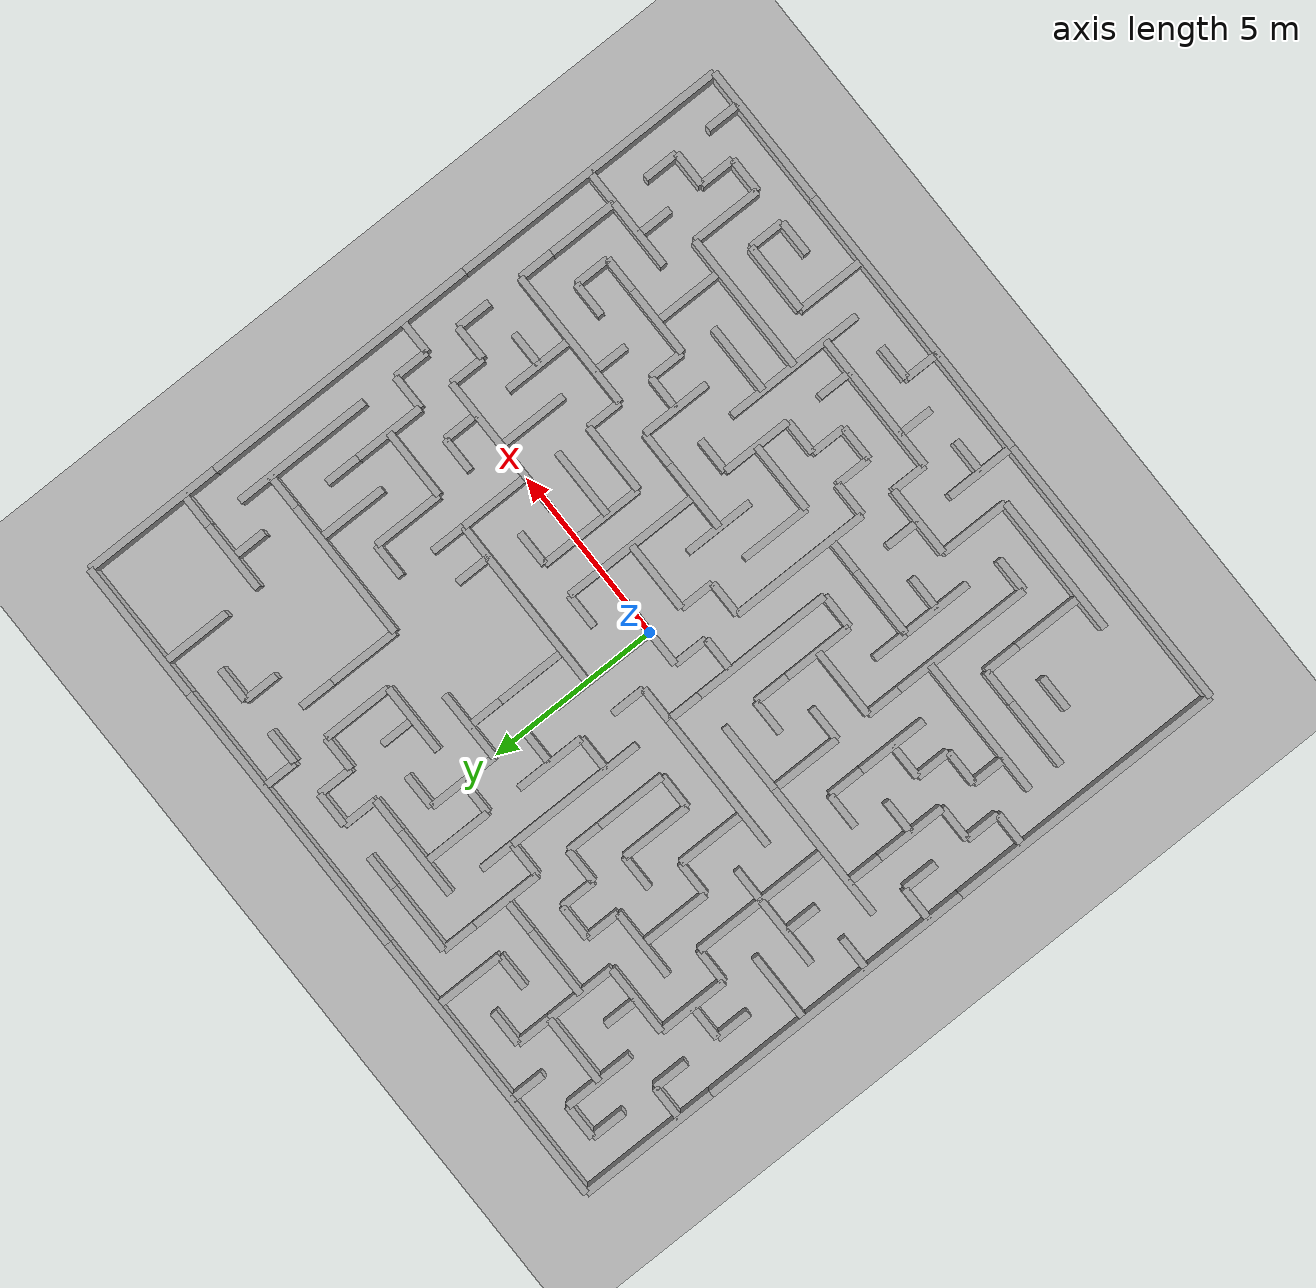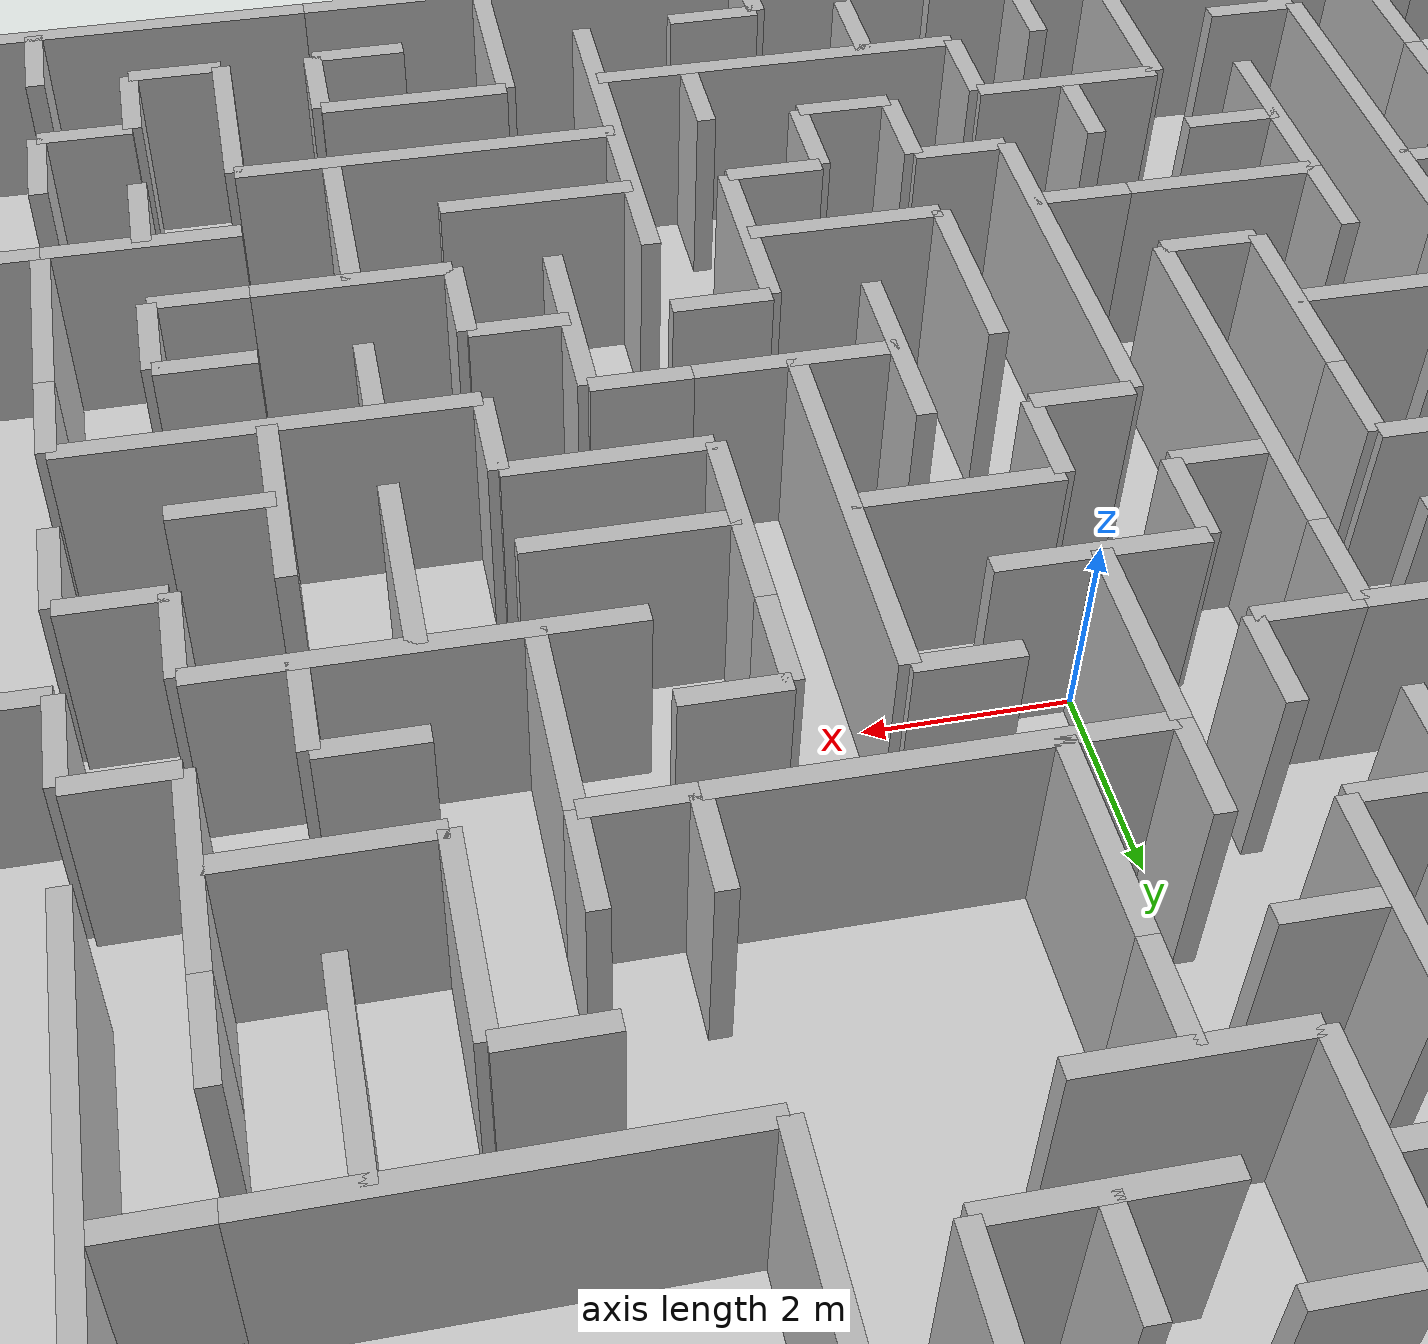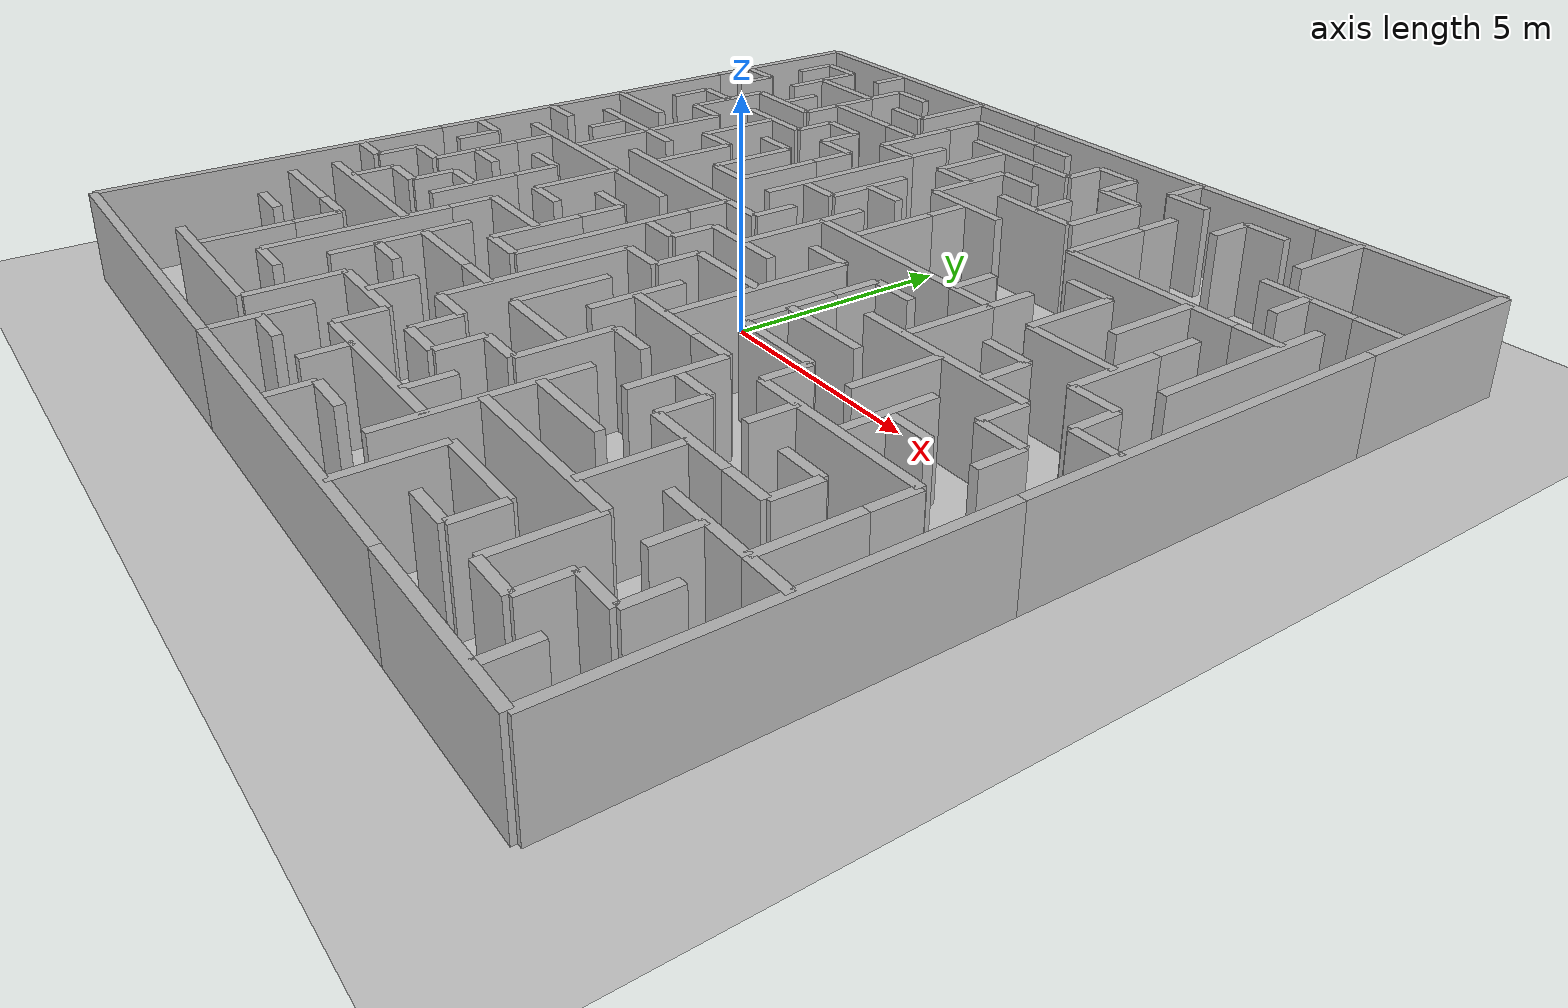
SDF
<?xml version="1.0"?>
<sdf version="1.8">
  <world name="maze_world">
    <physics name="1ms" type="ignored">
      <max_step_size>0.001</max_step_size>
      <real_time_factor>1.0</real_time_factor>
    </physics>
    <plugin name='ignition::gazebo::systems::Physics'
      filename='libignition-gazebo-physics-system.so' />
    <plugin name='ignition::gazebo::systems::UserCommands'
      filename='libignition-gazebo-user-commands-system.so' />
    <plugin name='ignition::gazebo::systems::SceneBroadcaster'
      filename='libignition-gazebo-scene-broadcaster-system.so' />
    <plugin name='ignition::gazebo::systems::Imu' filename='ignition-gazebo-imu-system' />
    <plugin name='ignition::gazebo::systems::Sensors' filename='ignition-gazebo-sensors-system'>
      <render_engine>ogre2</render_engine>
    </plugin>
    <include>
      <uri>https://fuel.gazebosim.org/1.0/OpenRobotics/models/Sun</uri>
    </include>
    <include>
      <name>ground</name>
      <uri>model://ground</uri>
    </include>
    <!-- Generated maze wall segments -->
    <include>
      <name>wall_8m_0</name>
      <uri>model://wall_8m</uri>
      <pose>-6.00 -10.00 0 0 0 0</pose>
    </include>
    <include>
      <name>wall_8m_1</name>
      <uri>model://wall_8m</uri>
      <pose>2.00 -10.00 0 0 0 0</pose>
    </include>
    <include>
      <name>wall_4m_2</name>
      <uri>model://wall_4m</uri>
      <pose>8.00 -10.00 0 0 0 0</pose>
    </include>
    <include>
      <name>wall_8m_3</name>
      <uri>model://wall_8m</uri>
      <pose>-6.00 10.00 0 0 0 0</pose>
    </include>
    <include>
      <name>wall_8m_4</name>
      <uri>model://wall_8m</uri>
      <pose>2.00 10.00 0 0 0 0</pose>
    </include>
    <include>
      <name>wall_4m_5</name>
      <uri>model://wall_4m</uri>
      <pose>8.00 10.00 0 0 0 0</pose>
    </include>
    <include>
      <name>wall_8m_6</name>
      <uri>model://wall_8m</uri>
      <pose>-10.00 -6.00 0 0 0 1.5708</pose>
    </include>
    <include>
      <name>wall_8m_7</name>
      <uri>model://wall_8m</uri>
      <pose>-10.00 2.00 0 0 0 1.5708</pose>
    </include>
    <include>
      <name>wall_4m_8</name>
      <uri>model://wall_4m</uri>
      <pose>-10.00 8.00 0 0 0 1.5708</pose>
    </include>
    <include>
      <name>wall_8m_9</name>
      <uri>model://wall_8m</uri>
      <pose>10.00 -6.00 0 0 0 1.5708</pose>
    </include>
    <include>
      <name>wall_8m_10</name>
      <uri>model://wall_8m</uri>
      <pose>10.00 2.00 0 0 0 1.5708</pose>
    </include>
    <include>
      <name>wall_4m_11</name>
      <uri>model://wall_4m</uri>
      <pose>10.00 8.00 0 0 0 1.5708</pose>
    </include>
    <include>
      <name>wall_4m_12</name>
      <uri>model://wall_4m</uri>
      <pose>-5.00 -9.00 0 0 0 0</pose>
    </include>
    <include>
      <name>wall_1m_13</name>
      <uri>model://wall_1m</uri>
      <pose>-1.50 -9.00 0 0 0 0</pose>
    </include>
    <include>
      <name>wall_1m_14</name>
      <uri>model://wall_1m</uri>
      <pose>1.50 -9.00 0 0 0 0</pose>
    </include>
    <include>
      <name>wall_1m_15</name>
      <uri>model://wall_1m</uri>
      <pose>5.50 -9.00 0 0 0 0</pose>
    </include>
    <include>
      <name>wall_1m_16</name>
      <uri>model://wall_1m</uri>
      <pose>7.50 -9.00 0 0 0 0</pose>
    </include>
    <include>
      <name>wall_1m_17</name>
      <uri>model://wall_1m</uri>
      <pose>-4.50 -8.00 0 0 0 0</pose>
    </include>
    <include>
      <name>wall_4m_18</name>
      <uri>model://wall_4m</uri>
      <pose>1.00 -8.00 0 0 0 0</pose>
    </include>
    <include>
      <name>wall_2m_19</name>
      <uri>model://wall_2m</uri>
      <pose>5.00 -8.00 0 0 0 0</pose>
    </include>
    <include>
      <name>wall_1m_20</name>
      <uri>model://wall_1m</uri>
      <pose>8.50 -8.00 0 0 0 0</pose>
    </include>
    <include>
      <name>wall_1m_21</name>
      <uri>model://wall_1m</uri>
      <pose>-7.50 -7.00 0 0 0 0</pose>
    </include>
    <include>
      <name>wall_2m_22</name>
      <uri>model://wall_2m</uri>
      <pose>-2.00 -7.00 0 0 0 0</pose>
    </include>
    <include>
      <name>wall_1m_23</name>
      <uri>model://wall_1m</uri>
      <pose>0.50 -7.00 0 0 0 0</pose>
    </include>
    <include>
      <name>wall_4m_24</name>
      <uri>model://wall_4m</uri>
      <pose>5.00 -7.00 0 0 0 0</pose>
    </include>
    <include>
      <name>wall_2m_25</name>
      <uri>model://wall_2m</uri>
      <pose>-8.00 -6.00 0 0 0 0</pose>
    </include>
    <include>
      <name>wall_1m_26</name>
      <uri>model://wall_1m</uri>
      <pose>-6.50 -6.00 0 0 0 0</pose>
    </include>
    <include>
      <name>wall_1m_27</name>
      <uri>model://wall_1m</uri>
      <pose>-3.50 -6.00 0 0 0 0</pose>
    </include>
    <include>
      <name>wall_1m_28</name>
      <uri>model://wall_1m</uri>
      <pose>-0.50 -6.00 0 0 0 0</pose>
    </include>
    <include>
      <name>wall_1m_29</name>
      <uri>model://wall_1m</uri>
      <pose>1.50 -6.00 0 0 0 0</pose>
    </include>
    <include>
      <name>wall_2m_30</name>
      <uri>model://wall_2m</uri>
      <pose>4.00 -6.00 0 0 0 0</pose>
    </include>
    <include>
      <name>wall_2m_31</name>
      <uri>model://wall_2m</uri>
      <pose>8.00 -6.00 0 0 0 0</pose>
    </include>
    <include>
      <name>wall_1m_32</name>
      <uri>model://wall_1m</uri>
      <pose>9.50 -6.00 0 0 0 0</pose>
    </include>
    <include>
      <name>wall_4m_33</name>
      <uri>model://wall_4m</uri>
      <pose>-7.00 -5.00 0 0 0 0</pose>
    </include>
    <include>
      <name>wall_2m_34</name>
      <uri>model://wall_2m</uri>
      <pose>-3.00 -5.00 0 0 0 0</pose>
    </include>
    <include>
      <name>wall_1m_35</name>
      <uri>model://wall_1m</uri>
      <pose>-1.50 -5.00 0 0 0 0</pose>
    </include>
    <include>
      <name>wall_2m_36</name>
      <uri>model://wall_2m</uri>
      <pose>1.00 -5.00 0 0 0 0</pose>
    </include>
    <include>
      <name>wall_2m_37</name>
      <uri>model://wall_2m</uri>
      <pose>6.00 -5.00 0 0 0 0</pose>
    </include>
    <include>
      <name>wall_1m_38</name>
      <uri>model://wall_1m</uri>
      <pose>7.50 -5.00 0 0 0 0</pose>
    </include>
    <include>
      <name>wall_1m_39</name>
      <uri>model://wall_1m</uri>
      <pose>-9.50 -4.00 0 0 0 0</pose>
    </include>
    <include>
      <name>wall_1m_40</name>
      <uri>model://wall_1m</uri>
      <pose>-7.50 -4.00 0 0 0 0</pose>
    </include>
    <include>
      <name>wall_1m_41</name>
      <uri>model://wall_1m</uri>
      <pose>-2.50 -4.00 0 0 0 0</pose>
    </include>
    <include>
      <name>wall_1m_42</name>
      <uri>model://wall_1m</uri>
      <pose>2.50 -4.00 0 0 0 0</pose>
    </include>
    <include>
      <name>wall_1m_43</name>
      <uri>model://wall_1m</uri>
      <pose>4.50 -4.00 0 0 0 0</pose>
    </include>
    <include>
      <name>wall_1m_44</name>
      <uri>model://wall_1m</uri>
      <pose>7.50 -4.00 0 0 0 0</pose>
    </include>
    <include>
      <name>wall_1m_45</name>
      <uri>model://wall_1m</uri>
      <pose>-8.50 -3.00 0 0 0 0</pose>
    </include>
    <include>
      <name>wall_1m_46</name>
      <uri>model://wall_1m</uri>
      <pose>-6.50 -3.00 0 0 0 0</pose>
    </include>
    <include>
      <name>wall_2m_47</name>
      <uri>model://wall_2m</uri>
      <pose>-4.00 -3.00 0 0 0 0</pose>
    </include>
    <include>
      <name>wall_2m_48</name>
      <uri>model://wall_2m</uri>
      <pose>2.00 -3.00 0 0 0 0</pose>
    </include>
    <include>
      <name>wall_1m_49</name>
      <uri>model://wall_1m</uri>
      <pose>3.50 -3.00 0 0 0 0</pose>
    </include>
    <include>
      <name>wall_4m_50</name>
      <uri>model://wall_4m</uri>
      <pose>7.00 -3.00 0 0 0 0</pose>
    </include>
    <include>
      <name>wall_1m_51</name>
      <uri>model://wall_1m</uri>
      <pose>-7.50 -2.00 0 0 0 0</pose>
    </include>
    <include>
      <name>wall_1m_52</name>
      <uri>model://wall_1m</uri>
      <pose>-4.50 -2.00 0 0 0 0</pose>
    </include>
    <include>
      <name>wall_1m_53</name>
      <uri>model://wall_1m</uri>
      <pose>-0.50 -2.00 0 0 0 0</pose>
    </include>
    <include>
      <name>wall_2m_54</name>
      <uri>model://wall_2m</uri>
      <pose>4.00 -2.00 0 0 0 0</pose>
    </include>
    <include>
      <name>wall_1m_55</name>
      <uri>model://wall_1m</uri>
      <pose>7.50 -2.00 0 0 0 0</pose>
    </include>
    <include>
      <name>wall_1m_56</name>
      <uri>model://wall_1m</uri>
      <pose>-9.50 -1.00 0 0 0 0</pose>
    </include>
    <include>
      <name>wall_1m_57</name>
      <uri>model://wall_1m</uri>
      <pose>-6.50 -1.00 0 0 0 0</pose>
    </include>
    <include>
      <name>wall_1m_58</name>
      <uri>model://wall_1m</uri>
      <pose>-3.50 -1.00 0 0 0 0</pose>
    </include>
    <include>
      <name>wall_1m_59</name>
      <uri>model://wall_1m</uri>
      <pose>-1.50 -1.00 0 0 0 0</pose>
    </include>
    <include>
      <name>wall_2m_60</name>
      <uri>model://wall_2m</uri>
      <pose>1.00 -1.00 0 0 0 0</pose>
    </include>
    <include>
      <name>wall_2m_61</name>
      <uri>model://wall_2m</uri>
      <pose>4.00 -1.00 0 0 0 0</pose>
    </include>
    <include>
      <name>wall_1m_62</name>
      <uri>model://wall_1m</uri>
      <pose>8.50 -1.00 0 0 0 0</pose>
    </include>
    <include>
      <name>wall_4m_63</name>
      <uri>model://wall_4m</uri>
      <pose>-7.00 0.00 0 0 0 0</pose>
    </include>
    <include>
      <name>wall_2m_64</name>
      <uri>model://wall_2m</uri>
      <pose>-4.00 0.00 0 0 0 0</pose>
    </include>
    <include>
      <name>wall_2m_65</name>
      <uri>model://wall_2m</uri>
      <pose>0.00 0.00 0 0 0 0</pose>
    </include>
    <include>
      <name>wall_4m_66</name>
      <uri>model://wall_4m</uri>
      <pose>6.00 0.00 0 0 0 0</pose>
    </include>
    <include>
      <name>wall_1m_67</name>
      <uri>model://wall_1m</uri>
      <pose>9.50 0.00 0 0 0 0</pose>
    </include>
    <include>
      <name>wall_1m_68</name>
      <uri>model://wall_1m</uri>
      <pose>-9.50 1.00 0 0 0 0</pose>
    </include>
    <include>
      <name>wall_4m_69</name>
      <uri>model://wall_4m</uri>
      <pose>-4.00 1.00 0 0 0 0</pose>
    </include>
    <include>
      <name>wall_1m_70</name>
      <uri>model://wall_1m</uri>
      <pose>-1.50 1.00 0 0 0 0</pose>
    </include>
    <include>
      <name>wall_1m_71</name>
      <uri>model://wall_1m</uri>
      <pose>1.50 1.00 0 0 0 0</pose>
    </include>
    <include>
      <name>wall_1m_72</name>
      <uri>model://wall_1m</uri>
      <pose>3.50 1.00 0 0 0 0</pose>
    </include>
    <include>
      <name>wall_1m_73</name>
      <uri>model://wall_1m</uri>
      <pose>6.50 1.00 0 0 0 0</pose>
    </include>
    <include>
      <name>wall_1m_74</name>
      <uri>model://wall_1m</uri>
      <pose>8.50 1.00 0 0 0 0</pose>
    </include>
    <include>
      <name>wall_2m_75</name>
      <uri>model://wall_2m</uri>
      <pose>-8.00 2.00 0 0 0 0</pose>
    </include>
    <include>
      <name>wall_1m_76</name>
      <uri>model://wall_1m</uri>
      <pose>-6.50 2.00 0 0 0 0</pose>
    </include>
    <include>
      <name>wall_1m_77</name>
      <uri>model://wall_1m</uri>
      <pose>-3.50 2.00 0 0 0 0</pose>
    </include>
    <include>
      <name>wall_4m_78</name>
      <uri>model://wall_4m</uri>
      <pose>2.00 2.00 0 0 0 0</pose>
    </include>
    <include>
      <name>wall_1m_79</name>
      <uri>model://wall_1m</uri>
      <pose>4.50 2.00 0 0 0 0</pose>
    </include>
    <include>
      <name>wall_2m_80</name>
      <uri>model://wall_2m</uri>
      <pose>7.00 2.00 0 0 0 0</pose>
    </include>
    <include>
      <name>wall_2m_81</name>
      <uri>model://wall_2m</uri>
      <pose>-9.00 3.00 0 0 0 0</pose>
    </include>
    <include>
      <name>wall_1m_82</name>
      <uri>model://wall_1m</uri>
      <pose>-5.50 3.00 0 0 0 0</pose>
    </include>
    <include>
      <name>wall_1m_83</name>
      <uri>model://wall_1m</uri>
      <pose>-1.50 3.00 0 0 0 0</pose>
    </include>
    <include>
      <name>wall_1m_84</name>
      <uri>model://wall_1m</uri>
      <pose>-7.50 4.00 0 0 0 0</pose>
    </include>
    <include>
      <name>wall_1m_85</name>
      <uri>model://wall_1m</uri>
      <pose>-4.50 4.00 0 0 0 0</pose>
    </include>
    <include>
      <name>wall_1m_86</name>
      <uri>model://wall_1m</uri>
      <pose>-0.50 4.00 0 0 0 0</pose>
    </include>
    <include>
      <name>wall_1m_87</name>
      <uri>model://wall_1m</uri>
      <pose>5.50 4.00 0 0 0 0</pose>
    </include>
    <include>
      <name>wall_1m_88</name>
      <uri>model://wall_1m</uri>
      <pose>-8.50 5.00 0 0 0 0</pose>
    </include>
    <include>
      <name>wall_2m_89</name>
      <uri>model://wall_2m</uri>
      <pose>-6.00 5.00 0 0 0 0</pose>
    </include>
    <include>
      <name>wall_1m_90</name>
      <uri>model://wall_1m</uri>
      <pose>-3.50 5.00 0 0 0 0</pose>
    </include>
    <include>
      <name>wall_2m_91</name>
      <uri>model://wall_2m</uri>
      <pose>1.00 5.00 0 0 0 0</pose>
    </include>
    <include>
      <name>wall_4m_92</name>
      <uri>model://wall_4m</uri>
      <pose>6.00 5.00 0 0 0 0</pose>
    </include>
    <include>
      <name>wall_1m_93</name>
      <uri>model://wall_1m</uri>
      <pose>8.50 5.00 0 0 0 0</pose>
    </include>
    <include>
      <name>wall_2m_94</name>
      <uri>model://wall_2m</uri>
      <pose>-7.00 6.00 0 0 0 0</pose>
    </include>
    <include>
      <name>wall_1m_95</name>
      <uri>model://wall_1m</uri>
      <pose>-4.50 6.00 0 0 0 0</pose>
    </include>
    <include>
      <name>wall_1m_96</name>
      <uri>model://wall_1m</uri>
      <pose>-2.50 6.00 0 0 0 0</pose>
    </include>
    <include>
      <name>wall_1m_97</name>
      <uri>model://wall_1m</uri>
      <pose>-0.50 6.00 0 0 0 0</pose>
    </include>
    <include>
      <name>wall_2m_98</name>
      <uri>model://wall_2m</uri>
      <pose>2.00 6.00 0 0 0 0</pose>
    </include>
    <include>
      <name>wall_1m_99</name>
      <uri>model://wall_1m</uri>
      <pose>-9.50 7.00 0 0 0 0</pose>
    </include>
    <include>
      <name>wall_2m_100</name>
      <uri>model://wall_2m</uri>
      <pose>-5.00 7.00 0 0 0 0</pose>
    </include>
    <include>
      <name>wall_1m_101</name>
      <uri>model://wall_1m</uri>
      <pose>-3.50 7.00 0 0 0 0</pose>
    </include>
    <include>
      <name>wall_1m_102</name>
      <uri>model://wall_1m</uri>
      <pose>0.50 7.00 0 0 0 0</pose>
    </include>
    <include>
      <name>wall_2m_103</name>
      <uri>model://wall_2m</uri>
      <pose>8.00 7.00 0 0 0 0</pose>
    </include>
    <include>
      <name>wall_1m_104</name>
      <uri>model://wall_1m</uri>
      <pose>9.50 7.00 0 0 0 0</pose>
    </include>
    <include>
      <name>wall_2m_105</name>
      <uri>model://wall_2m</uri>
      <pose>-7.00 8.00 0 0 0 0</pose>
    </include>
    <include>
      <name>wall_1m_106</name>
      <uri>model://wall_1m</uri>
      <pose>-4.50 8.00 0 0 0 0</pose>
    </include>
    <include>
      <name>wall_2m_107</name>
      <uri>model://wall_2m</uri>
      <pose>-1.00 8.00 0 0 0 0</pose>
    </include>
    <include>
      <name>wall_1m_108</name>
      <uri>model://wall_1m</uri>
      <pose>0.50 8.00 0 0 0 0</pose>
    </include>
    <include>
      <name>wall_1m_109</name>
      <uri>model://wall_1m</uri>
      <pose>2.50 8.00 0 0 0 0</pose>
    </include>
    <include>
      <name>wall_1m_110</name>
      <uri>model://wall_1m</uri>
      <pose>-8.50 9.00 0 0 0 0</pose>
    </include>
    <include>
      <name>wall_1m_111</name>
      <uri>model://wall_1m</uri>
      <pose>-5.50 9.00 0 0 0 0</pose>
    </include>
    <include>
      <name>wall_2m_112</name>
      <uri>model://wall_2m</uri>
      <pose>-2.00 9.00 0 0 0 0</pose>
    </include>
    <include>
      <name>wall_1m_113</name>
      <uri>model://wall_1m</uri>
      <pose>-0.50 9.00 0 0 0 0</pose>
    </include>
    <include>
      <name>wall_1m_114</name>
      <uri>model://wall_1m</uri>
      <pose>1.50 9.00 0 0 0 0</pose>
    </include>
    <include>
      <name>wall_1m_115</name>
      <uri>model://wall_1m</uri>
      <pose>3.50 9.00 0 0 0 0</pose>
    </include>
    <include>
      <name>wall_1m_116</name>
      <uri>model://wall_1m</uri>
      <pose>5.50 9.00 0 0 0 0</pose>
    </include>
    <include>
      <name>wall_1m_117</name>
      <uri>model://wall_1m</uri>
      <pose>-9.00 -3.50 0 0 0 1.5708</pose>
    </include>
    <include>
      <name>wall_1m_118</name>
      <uri>model://wall_1m</uri>
      <pose>-9.00 -1.50 0 0 0 1.5708</pose>
    </include>
    <include>
      <name>wall_1m_119</name>
      <uri>model://wall_1m</uri>
      <pose>-9.00 4.50 0 0 0 1.5708</pose>
    </include>
    <include>
      <name>wall_1m_120</name>
      <uri>model://wall_1m</uri>
      <pose>-9.00 6.50 0 0 0 1.5708</pose>
    </include>
    <include>
      <name>wall_1m_121</name>
      <uri>model://wall_1m</uri>
      <pose>-9.00 8.50 0 0 0 1.5708</pose>
    </include>
    <include>
      <name>wall_1m_122</name>
      <uri>model://wall_1m</uri>
      <pose>-8.00 -4.50 0 0 0 1.5708</pose>
    </include>
    <include>
      <name>wall_2m_123</name>
      <uri>model://wall_2m</uri>
      <pose>-8.00 -2.00 0 0 0 1.5708</pose>
    </include>
    <include>
      <name>wall_1m_124</name>
      <uri>model://wall_1m</uri>
      <pose>-8.00 -0.50 0 0 0 1.5708</pose>
    </include>
    <include>
      <name>wall_1m_125</name>
      <uri>model://wall_1m</uri>
      <pose>-8.00 1.50 0 0 0 1.5708</pose>
    </include>
    <include>
      <name>wall_2m_126</name>
      <uri>model://wall_2m</uri>
      <pose>-8.00 5.00 0 0 0 1.5708</pose>
    </include>
    <include>
      <name>wall_2m_127</name>
      <uri>model://wall_2m</uri>
      <pose>-8.00 8.00 0 0 0 1.5708</pose>
    </include>
    <include>
      <name>wall_1m_128</name>
      <uri>model://wall_1m</uri>
      <pose>-7.00 -3.50 0 0 0 1.5708</pose>
    </include>
    <include>
      <name>wall_4m_129</name>
      <uri>model://wall_4m</uri>
      <pose>-7.00 2.00 0 0 0 1.5708</pose>
    </include>
    <include>
      <name>wall_1m_130</name>
      <uri>model://wall_1m</uri>
      <pose>-7.00 6.50 0 0 0 1.5708</pose>
    </include>
    <include>
      <name>wall_1m_131</name>
      <uri>model://wall_1m</uri>
      <pose>-7.00 9.50 0 0 0 1.5708</pose>
    </include>
    <include>
      <name>wall_2m_132</name>
      <uri>model://wall_2m</uri>
      <pose>-6.00 -8.00 0 0 0 1.5708</pose>
    </include>
    <include>
      <name>wall_1m_133</name>
      <uri>model://wall_1m</uri>
      <pose>-6.00 -6.50 0 0 0 1.5708</pose>
    </include>
    <include>
      <name>wall_2m_134</name>
      <uri>model://wall_2m</uri>
      <pose>-6.00 -3.00 0 0 0 1.5708</pose>
    </include>
    <include>
      <name>wall_1m_135</name>
      <uri>model://wall_1m</uri>
      <pose>-6.00 -1.50 0 0 0 1.5708</pose>
    </include>
    <include>
      <name>wall_2m_136</name>
      <uri>model://wall_2m</uri>
      <pose>-6.00 4.00 0 0 0 1.5708</pose>
    </include>
    <include>
      <name>wall_2m_137</name>
      <uri>model://wall_2m</uri>
      <pose>-6.00 7.00 0 0 0 1.5708</pose>
    </include>
    <include>
      <name>wall_1m_138</name>
      <uri>model://wall_1m</uri>
      <pose>-6.00 8.50 0 0 0 1.5708</pose>
    </include>
    <include>
      <name>wall_4m_139</name>
      <uri>model://wall_4m</uri>
      <pose>-5.00 -6.00 0 0 0 1.5708</pose>
    </include>
    <include>
      <name>wall_1m_140</name>
      <uri>model://wall_1m</uri>
      <pose>-5.00 -3.50 0 0 0 1.5708</pose>
    </include>
    <include>
      <name>wall_2m_141</name>
      <uri>model://wall_2m</uri>
      <pose>-5.00 -1.00 0 0 0 1.5708</pose>
    </include>
    <include>
      <name>wall_2m_142</name>
      <uri>model://wall_2m</uri>
      <pose>-5.00 2.00 0 0 0 1.5708</pose>
    </include>
    <include>
      <name>wall_1m_143</name>
      <uri>model://wall_1m</uri>
      <pose>-5.00 5.50 0 0 0 1.5708</pose>
    </include>
    <include>
      <name>wall_2m_144</name>
      <uri>model://wall_2m</uri>
      <pose>-4.00 -6.00 0 0 0 1.5708</pose>
    </include>
    <include>
      <name>wall_1m_145</name>
      <uri>model://wall_1m</uri>
      <pose>-4.00 -4.50 0 0 0 1.5708</pose>
    </include>
    <include>
      <name>wall_2m_146</name>
      <uri>model://wall_2m</uri>
      <pose>-4.00 3.00 0 0 0 1.5708</pose>
    </include>
    <include>
      <name>wall_1m_147</name>
      <uri>model://wall_1m</uri>
      <pose>-4.00 5.50 0 0 0 1.5708</pose>
    </include>
    <include>
      <name>wall_2m_148</name>
      <uri>model://wall_2m</uri>
      <pose>-4.00 9.00 0 0 0 1.5708</pose>
    </include>
    <include>
      <name>wall_2m_149</name>
      <uri>model://wall_2m</uri>
      <pose>-3.00 -8.00 0 0 0 1.5708</pose>
    </include>
    <include>
      <name>wall_2m_150</name>
      <uri>model://wall_2m</uri>
      <pose>-3.00 -3.00 0 0 0 1.5708</pose>
    </include>
    <include>
      <name>wall_1m_151</name>
      <uri>model://wall_1m</uri>
      <pose>-3.00 -1.50 0 0 0 1.5708</pose>
    </include>
    <include>
      <name>wall_2m_152</name>
      <uri>model://wall_2m</uri>
      <pose>-3.00 3.00 0 0 0 1.5708</pose>
    </include>
    <include>
      <name>wall_1m_153</name>
      <uri>model://wall_1m</uri>
      <pose>-3.00 4.50 0 0 0 1.5708</pose>
    </include>
    <include>
      <name>wall_2m_154</name>
      <uri>model://wall_2m</uri>
      <pose>-3.00 7.00 0 0 0 1.5708</pose>
    </include>
    <include>
      <name>wall_1m_155</name>
      <uri>model://wall_1m</uri>
      <pose>-3.00 8.50 0 0 0 1.5708</pose>
    </include>
    <include>
      <name>wall_2m_156</name>
      <uri>model://wall_2m</uri>
      <pose>-2.00 -9.00 0 0 0 1.5708</pose>
    </include>
    <include>
      <name>wall_1m_157</name>
      <uri>model://wall_1m</uri>
      <pose>-2.00 -6.50 0 0 0 1.5708</pose>
    </include>
    <include>
      <name>wall_4m_158</name>
      <uri>model://wall_4m</uri>
      <pose>-2.00 -2.00 0 0 0 1.5708</pose>
    </include>
    <include>
      <name>wall_1m_159</name>
      <uri>model://wall_1m</uri>
      <pose>-2.00 0.50 0 0 0 1.5708</pose>
    </include>
    <include>
      <name>wall_4m_160</name>
      <uri>model://wall_4m</uri>
      <pose>-2.00 4.00 0 0 0 1.5708</pose>
    </include>
    <include>
      <name>wall_1m_161</name>
      <uri>model://wall_1m</uri>
      <pose>-2.00 6.50 0 0 0 1.5708</pose>
    </include>
    <include>
      <name>wall_1m_162</name>
      <uri>model://wall_1m</uri>
      <pose>-1.00 -7.50 0 0 0 1.5708</pose>
    </include>
    <include>
      <name>wall_4m_163</name>
      <uri>model://wall_4m</uri>
      <pose>-1.00 -4.00 0 0 0 1.5708</pose>
    </include>
    <include>
      <name>wall_1m_164</name>
      <uri>model://wall_1m</uri>
      <pose>-1.00 -0.50 0 0 0 1.5708</pose>
    </include>
    <include>
      <name>wall_1m_165</name>
      <uri>model://wall_1m</uri>
      <pose>-1.00 1.50 0 0 0 1.5708</pose>
    </include>
    <include>
      <name>wall_2m_166</name>
      <uri>model://wall_2m</uri>
      <pose>-1.00 4.00 0 0 0 1.5708</pose>
    </include>
    <include>
      <name>wall_2m_167</name>
      <uri>model://wall_2m</uri>
      <pose>-1.00 7.00 0 0 0 1.5708</pose>
    </include>
    <include>
      <name>wall_1m_168</name>
      <uri>model://wall_1m</uri>
      <pose>0.00 -8.50 0 0 0 1.5708</pose>
    </include>
    <include>
      <name>wall_1m_169</name>
      <uri>model://wall_1m</uri>
      <pose>0.00 -6.50 0 0 0 1.5708</pose>
    </include>
    <include>
      <name>wall_2m_170</name>
      <uri>model://wall_2m</uri>
      <pose>0.00 -4.00 0 0 0 1.5708</pose>
    </include>
    <include>
      <name>wall_1m_171</name>
      <uri>model://wall_1m</uri>
      <pose>0.00 -1.50 0 0 0 1.5708</pose>
    </include>
    <include>
      <name>wall_2m_172</name>
      <uri>model://wall_2m</uri>
      <pose>0.00 1.00 0 0 0 1.5708</pose>
    </include>
    <include>
      <name>wall_1m_173</name>
      <uri>model://wall_1m</uri>
      <pose>0.00 2.50 0 0 0 1.5708</pose>
    </include>
    <include>
      <name>wall_2m_174</name>
      <uri>model://wall_2m</uri>
      <pose>0.00 6.00 0 0 0 1.5708</pose>
    </include>
    <include>
      <name>wall_1m_175</name>
      <uri>model://wall_1m</uri>
      <pose>1.00 -9.50 0 0 0 1.5708</pose>
    </include>
    <include>
      <name>wall_1m_176</name>
      <uri>model://wall_1m</uri>
      <pose>1.00 -6.50 0 0 0 1.5708</pose>
    </include>
    <include>
      <name>wall_2m_177</name>
      <uri>model://wall_2m</uri>
      <pose>1.00 -3.00 0 0 0 1.5708</pose>
    </include>
    <include>
      <name>wall_2m_178</name>
      <uri>model://wall_2m</uri>
      <pose>1.00 3.00 0 0 0 1.5708</pose>
    </include>
    <include>
      <name>wall_1m_179</name>
      <uri>model://wall_1m</uri>
      <pose>1.00 4.50 0 0 0 1.5708</pose>
    </include>
    <include>
      <name>wall_1m_180</name>
      <uri>model://wall_1m</uri>
      <pose>1.00 8.50 0 0 0 1.5708</pose>
    </include>
    <include>
      <name>wall_1m_181</name>
      <uri>model://wall_1m</uri>
      <pose>2.00 -7.50 0 0 0 1.5708</pose>
    </include>
    <include>
      <name>wall_2m_182</name>
      <uri>model://wall_2m</uri>
      <pose>2.00 -5.00 0 0 0 1.5708</pose>
    </include>
    <include>
      <name>wall_4m_183</name>
      <uri>model://wall_4m</uri>
      <pose>2.00 -1.00 0 0 0 1.5708</pose>
    </include>
    <include>
      <name>wall_1m_184</name>
      <uri>model://wall_1m</uri>
      <pose>2.00 6.50 0 0 0 1.5708</pose>
    </include>
    <include>
      <name>wall_1m_185</name>
      <uri>model://wall_1m</uri>
      <pose>2.00 8.50 0 0 0 1.5708</pose>
    </include>
    <include>
      <name>wall_4m_186</name>
      <uri>model://wall_4m</uri>
      <pose>3.00 -7.00 0 0 0 1.5708</pose>
    </include>
    <include>
      <name>wall_2m_187</name>
      <uri>model://wall_2m</uri>
      <pose>3.00 -1.00 0 0 0 1.5708</pose>
    </include>
    <include>
      <name>wall_1m_188</name>
      <uri>model://wall_1m</uri>
      <pose>3.00 0.50 0 0 0 1.5708</pose>
    </include>
    <include>
      <name>wall_2m_189</name>
      <uri>model://wall_2m</uri>
      <pose>3.00 7.00 0 0 0 1.5708</pose>
    </include>
    <include>
      <name>wall_1m_190</name>
      <uri>model://wall_1m</uri>
      <pose>3.00 9.50 0 0 0 1.5708</pose>
    </include>
    <include>
      <name>wall_2m_191</name>
      <uri>model://wall_2m</uri>
      <pose>4.00 -9.00 0 0 0 1.5708</pose>
    </include>
    <include>
      <name>wall_2m_192</name>
      <uri>model://wall_2m</uri>
      <pose>4.00 -4.00 0 0 0 1.5708</pose>
    </include>
    <include>
      <name>wall_1m_193</name>
      <uri>model://wall_1m</uri>
      <pose>4.00 2.50 0 0 0 1.5708</pose>
    </include>
    <include>
      <name>wall_2m_194</name>
      <uri>model://wall_2m</uri>
      <pose>4.00 6.00 0 0 0 1.5708</pose>
    </include>
    <include>
      <name>wall_1m_195</name>
      <uri>model://wall_1m</uri>
      <pose>4.00 7.50 0 0 0 1.5708</pose>
    </include>
    <include>
      <name>wall_1m_196</name>
      <uri>model://wall_1m</uri>
      <pose>5.00 -4.50 0 0 0 1.5708</pose>
    </include>
    <include>
      <name>wall_1m_197</name>
      <uri>model://wall_1m</uri>
      <pose>5.00 -2.50 0 0 0 1.5708</pose>
    </include>
    <include>
      <name>wall_2m_198</name>
      <uri>model://wall_2m</uri>
      <pose>5.00 1.00 0 0 0 1.5708</pose>
    </include>
    <include>
      <name>wall_1m_199</name>
      <uri>model://wall_1m</uri>
      <pose>5.00 2.50 0 0 0 1.5708</pose>
    </include>
    <include>
      <name>wall_1m_200</name>
      <uri>model://wall_1m</uri>
      <pose>5.00 8.50 0 0 0 1.5708</pose>
    </include>
    <include>
      <name>wall_1m_201</name>
      <uri>model://wall_1m</uri>
      <pose>6.00 -8.50 0 0 0 1.5708</pose>
    </include>
    <include>
      <name>wall_2m_202</name>
      <uri>model://wall_2m</uri>
      <pose>6.00 -6.00 0 0 0 1.5708</pose>
    </include>
    <include>
      <name>wall_1m_203</name>
      <uri>model://wall_1m</uri>
      <pose>6.00 -3.50 0 0 0 1.5708</pose>
    </include>
    <include>
      <name>wall_2m_204</name>
      <uri>model://wall_2m</uri>
      <pose>6.00 -1.00 0 0 0 1.5708</pose>
    </include>
    <include>
      <name>wall_2m_205</name>
      <uri>model://wall_2m</uri>
      <pose>6.00 3.00 0 0 0 1.5708</pose>
    </include>
    <include>
      <name>wall_2m_206</name>
      <uri>model://wall_2m</uri>
      <pose>7.00 -8.00 0 0 0 1.5708</pose>
    </include>
    <include>
      <name>wall_2m_207</name>
      <uri>model://wall_2m</uri>
      <pose>7.00 -2.00 0 0 0 1.5708</pose>
    </include>
    <include>
      <name>wall_1m_208</name>
      <uri>model://wall_1m</uri>
      <pose>7.00 0.50 0 0 0 1.5708</pose>
    </include>
    <include>
      <name>wall_2m_209</name>
      <uri>model://wall_2m</uri>
      <pose>7.00 4.00 0 0 0 1.5708</pose>
    </include>
    <include>
      <name>wall_2m_210</name>
      <uri>model://wall_2m</uri>
      <pose>7.00 9.00 0 0 0 1.5708</pose>
    </include>
    <include>
      <name>wall_1m_211</name>
      <uri>model://wall_1m</uri>
      <pose>8.00 -8.50 0 0 0 1.5708</pose>
    </include>
    <include>
      <name>wall_1m_212</name>
      <uri>model://wall_1m</uri>
      <pose>8.00 -6.50 0 0 0 1.5708</pose>
    </include>
    <include>
      <name>wall_1m_213</name>
      <uri>model://wall_1m</uri>
      <pose>8.00 -4.50 0 0 0 1.5708</pose>
    </include>
    <include>
      <name>wall_1m_214</name>
      <uri>model://wall_1m</uri>
      <pose>8.00 -0.50 0 0 0 1.5708</pose>
    </include>
    <include>
      <name>wall_2m_215</name>
      <uri>model://wall_2m</uri>
      <pose>8.00 2.00 0 0 0 1.5708</pose>
    </include>
    <include>
      <name>wall_1m_216</name>
      <uri>model://wall_1m</uri>
      <pose>8.00 3.50 0 0 0 1.5708</pose>
    </include>
    <include>
      <name>wall_1m_217</name>
      <uri>model://wall_1m</uri>
      <pose>8.00 6.50 0 0 0 1.5708</pose>
    </include>
    <include>
      <name>wall_1m_218</name>
      <uri>model://wall_1m</uri>
      <pose>9.00 -9.50 0 0 0 1.5708</pose>
    </include>
    <include>
      <name>wall_1m_219</name>
      <uri>model://wall_1m</uri>
      <pose>9.00 -7.50 0 0 0 1.5708</pose>
    </include>
    <include>
      <name>wall_2m_220</name>
      <uri>model://wall_2m</uri>
      <pose>9.00 -5.00 0 0 0 1.5708</pose>
    </include>
    <include>
      <name>wall_1m_221</name>
      <uri>model://wall_1m</uri>
      <pose>9.00 -3.50 0 0 0 1.5708</pose>
    </include>
    <include>
      <name>wall_1m_222</name>
      <uri>model://wall_1m</uri>
      <pose>9.00 -1.50 0 0 0 1.5708</pose>
    </include>
    <include>
      <name>wall_1m_223</name>
      <uri>model://wall_1m</uri>
      <pose>9.00 0.50 0 0 0 1.5708</pose>
    </include>
    <include>
      <name>wall_4m_224</name>
      <uri>model://wall_4m</uri>
      <pose>9.00 4.00 0 0 0 1.5708</pose>
    </include>
  </world>
</sdf>

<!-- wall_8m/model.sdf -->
<sdf version="1.10">
  <model name="wall_8m">
    <static>true</static>
    <link name="wall_link">
      <visual name="wall_visual">
        <geometry>
          <mesh>
            <uri>model://wall_8m/meshes/wall_8m.dae</uri>
          </mesh>
        </geometry>
      </visual>

      <collision name="wall_collision">
        <pose>0 0 1 0 0 0</pose>
        <geometry>
          <box>
            <size>8 0.2 2</size>
          </box>
        </geometry>
      </collision>
    </link>
  </model>
</sdf>

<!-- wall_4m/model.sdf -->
<sdf version="1.10">
  <model name="wall_4m">
    <static>true</static>
    <link name="wall_link">
      <visual name="wall_visual">
        <geometry>
          <mesh>
            <uri>model://wall_4m/meshes/wall_4m.dae</uri>
          </mesh>
        </geometry>
      </visual>

      <collision name="wall_collision">
        <pose>0 0 1 0 0 0</pose>
        <geometry>
          <box>
            <size>4 0.2 2</size>
          </box>
        </geometry>
      </collision>
    </link>
  </model>
</sdf>

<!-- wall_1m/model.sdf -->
<sdf version="1.10">
  <model name="wall_1m">
    <static>true</static>
    <link name="wall_link">
      <visual name="wall_visual">
        <geometry>
          <mesh>
            <uri>model://wall_1m/meshes/wall_1m.dae</uri>
          </mesh>
        </geometry>
      </visual>

      <collision name="wall_collision">
        <pose>0 0 1 0 0 0</pose>
        <geometry>
          <box>
            <size>1 0.2 2</size>
          </box>
        </geometry>
      </collision>
    </link>
  </model>
</sdf>

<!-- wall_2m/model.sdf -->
<sdf version="1.10">
  <model name="wall_2m">
    <static>true</static>
    <link name="wall_link">
      <visual name="wall_visual">
        <geometry>
          <mesh>
            <uri>model://wall_2m/meshes/wall_2m.dae</uri>
          </mesh>
        </geometry>
      </visual>

      <collision name="wall_collision">
        <pose>0 0 1 0 0 0</pose>
        <geometry>
          <box>
            <size>2 0.2 2</size>
          </box>
        </geometry>
      </collision>
    </link>
  </model>
</sdf>
